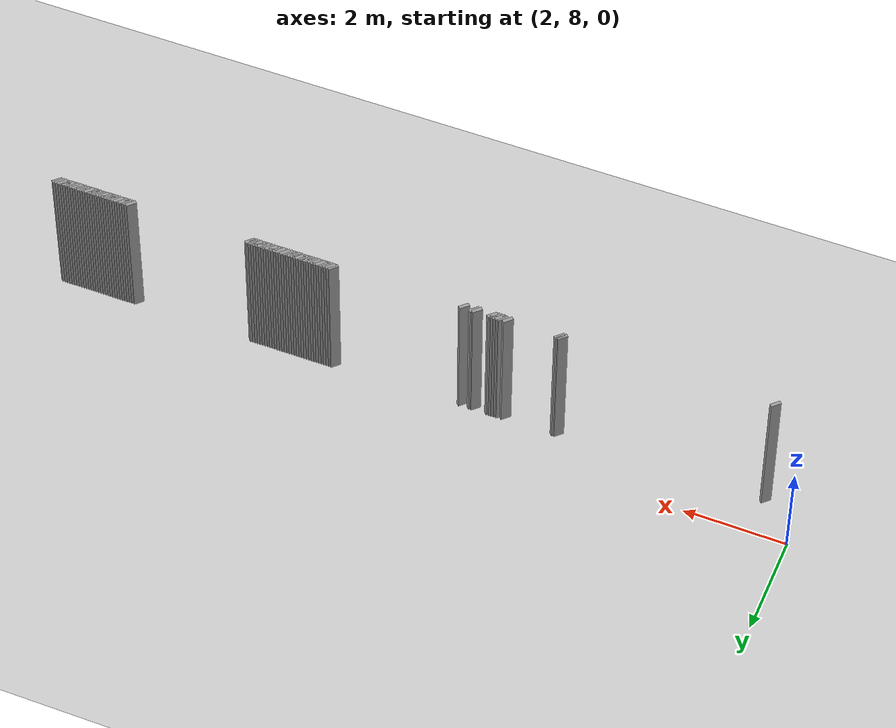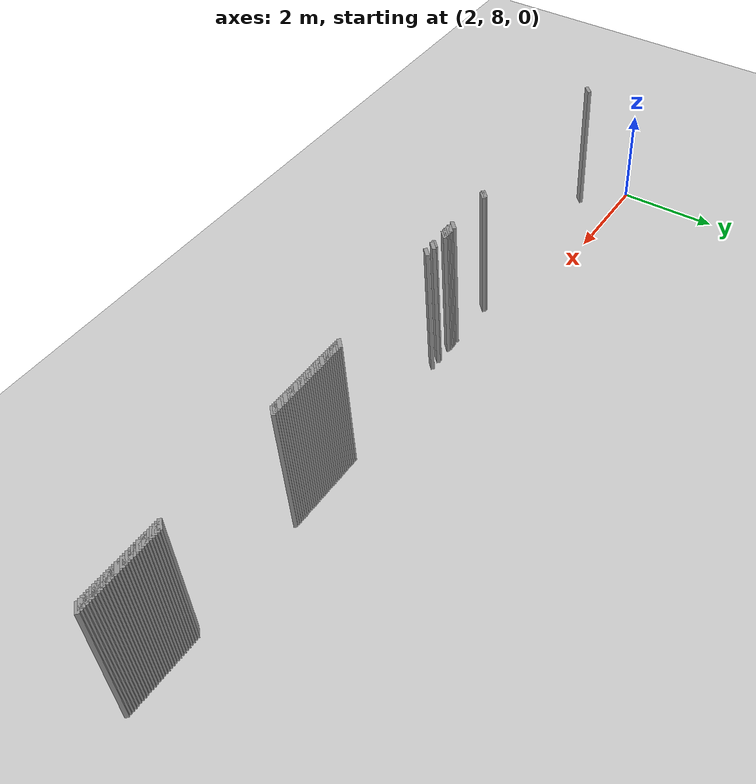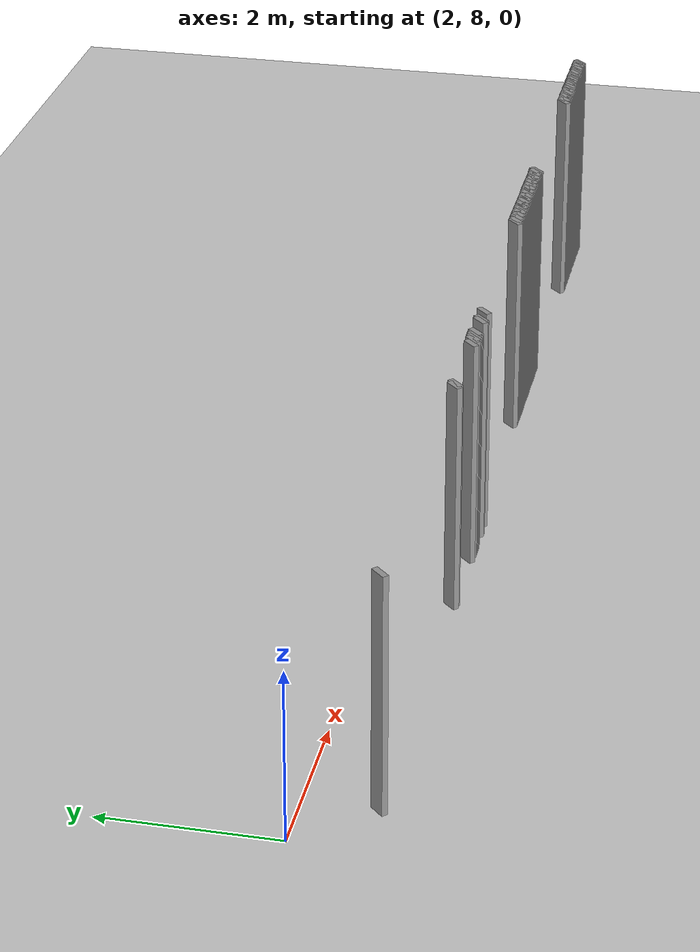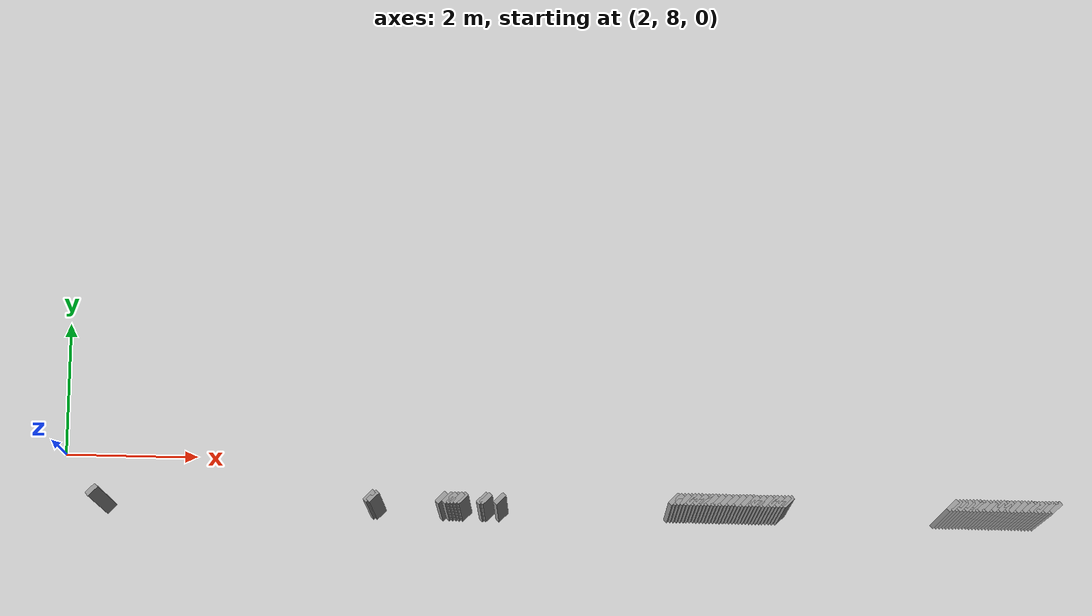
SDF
<sdf version="1.5">
 <world name="default">
  <include><uri>model://ground_plane</uri></include>
  <include><uri>model://sun</uri></include>
  <model name="grey_wall_1634">
   <static>1</static>
   <link name="link">
    <pose>11.2 7.25  1.4 0 0 -0.785398163397</pose>
    <collision name="collision"><geometry><box><size>0.0707106781187 .2  2.8</size></box></geometry></collision>
    <visual name="visual">
     <cast_shadows>0</cast_shadows>
     <geometry><box><size>0.0707106781187 .2  2.8</size></box></geometry>
     <material>
      <script>
       <uri>model://grey_wall/materials/scripts</uri>
       <uri>model://grey_wall/materials/textures</uri>
       <name>vrc/grey_wall</name>
      </script>
     </material>
    </visual>
   </link>
  </model>
  <model name="grey_wall_1635">
   <static>1</static>
   <link name="link">
    <pose>11.25 7.25  1.4 0 0 -0.785398163397</pose>
    <collision name="collision"><geometry><box><size>0.0707106781187 .2  2.8</size></box></geometry></collision>
    <visual name="visual">
     <cast_shadows>0</cast_shadows>
     <geometry><box><size>0.0707106781187 .2  2.8</size></box></geometry>
     <material>
      <script>
       <uri>model://grey_wall/materials/scripts</uri>
       <uri>model://grey_wall/materials/textures</uri>
       <name>vrc/grey_wall</name>
      </script>
     </material>
    </visual>
   </link>
  </model>
  <model name="grey_wall_1636">
   <static>1</static>
   <link name="link">
    <pose>11.3 7.25  1.4 0 0 -0.785398163397</pose>
    <collision name="collision"><geometry><box><size>0.0707106781187 .2  2.8</size></box></geometry></collision>
    <visual name="visual">
     <cast_shadows>0</cast_shadows>
     <geometry><box><size>0.0707106781187 .2  2.8</size></box></geometry>
     <material>
      <script>
       <uri>model://grey_wall/materials/scripts</uri>
       <uri>model://grey_wall/materials/textures</uri>
       <name>vrc/grey_wall</name>
      </script>
     </material>
    </visual>
   </link>
  </model>
  <model name="grey_wall_1637">
   <static>1</static>
   <link name="link">
    <pose>11.35 7.25  1.4 0 0 -0.785398163397</pose>
    <collision name="collision"><geometry><box><size>0.0707106781187 .2  2.8</size></box></geometry></collision>
    <visual name="visual">
     <cast_shadows>0</cast_shadows>
     <geometry><box><size>0.0707106781187 .2  2.8</size></box></geometry>
     <material>
      <script>
       <uri>model://grey_wall/materials/scripts</uri>
       <uri>model://grey_wall/materials/textures</uri>
       <name>vrc/grey_wall</name>
      </script>
     </material>
    </visual>
   </link>
  </model>
  <model name="grey_wall_1638">
   <static>1</static>
   <link name="link">
    <pose>11.4 7.25  1.4 0 0 -0.785398163397</pose>
    <collision name="collision"><geometry><box><size>0.0707106781187 .2  2.8</size></box></geometry></collision>
    <visual name="visual">
     <cast_shadows>0</cast_shadows>
     <geometry><box><size>0.0707106781187 .2  2.8</size></box></geometry>
     <material>
      <script>
       <uri>model://grey_wall/materials/scripts</uri>
       <uri>model://grey_wall/materials/textures</uri>
       <name>vrc/grey_wall</name>
      </script>
     </material>
    </visual>
   </link>
  </model>
  <model name="grey_wall_1639">
   <static>1</static>
   <link name="link">
    <pose>11.45 7.25  1.4 0 0 -0.785398163397</pose>
    <collision name="collision"><geometry><box><size>0.0707106781187 .2  2.8</size></box></geometry></collision>
    <visual name="visual">
     <cast_shadows>0</cast_shadows>
     <geometry><box><size>0.0707106781187 .2  2.8</size></box></geometry>
     <material>
      <script>
       <uri>model://grey_wall/materials/scripts</uri>
       <uri>model://grey_wall/materials/textures</uri>
       <name>vrc/grey_wall</name>
      </script>
     </material>
    </visual>
   </link>
  </model>
  <model name="grey_wall_1640">
   <static>1</static>
   <link name="link">
    <pose>11.5 7.25  1.4 0 0 -0.785398163397</pose>
    <collision name="collision"><geometry><box><size>0.0707106781187 .2  2.8</size></box></geometry></collision>
    <visual name="visual">
     <cast_shadows>0</cast_shadows>
     <geometry><box><size>0.0707106781187 .2  2.8</size></box></geometry>
     <material>
      <script>
       <uri>model://grey_wall/materials/scripts</uri>
       <uri>model://grey_wall/materials/textures</uri>
       <name>vrc/grey_wall</name>
      </script>
     </material>
    </visual>
   </link>
  </model>
  <model name="grey_wall_1641">
   <static>1</static>
   <link name="link">
    <pose>11.55 7.25  1.4 0 0 -0.785398163397</pose>
    <collision name="collision"><geometry><box><size>0.0707106781187 .2  2.8</size></box></geometry></collision>
    <visual name="visual">
     <cast_shadows>0</cast_shadows>
     <geometry><box><size>0.0707106781187 .2  2.8</size></box></geometry>
     <material>
      <script>
       <uri>model://grey_wall/materials/scripts</uri>
       <uri>model://grey_wall/materials/textures</uri>
       <name>vrc/grey_wall</name>
      </script>
     </material>
    </visual>
   </link>
  </model>
  <model name="grey_wall_1642">
   <static>1</static>
   <link name="link">
    <pose>11.6 7.25  1.4 0 0 -0.785398163397</pose>
    <collision name="collision"><geometry><box><size>0.0707106781187 .2  2.8</size></box></geometry></collision>
    <visual name="visual">
     <cast_shadows>0</cast_shadows>
     <geometry><box><size>0.0707106781187 .2  2.8</size></box></geometry>
     <material>
      <script>
       <uri>model://grey_wall/materials/scripts</uri>
       <uri>model://grey_wall/materials/textures</uri>
       <name>vrc/grey_wall</name>
      </script>
     </material>
    </visual>
   </link>
  </model>
  <model name="grey_wall_1643">
   <static>1</static>
   <link name="link">
    <pose>11.65 7.25  1.4 0 0 -0.785398163397</pose>
    <collision name="collision"><geometry><box><size>0.0707106781187 .2  2.8</size></box></geometry></collision>
    <visual name="visual">
     <cast_shadows>0</cast_shadows>
     <geometry><box><size>0.0707106781187 .2  2.8</size></box></geometry>
     <material>
      <script>
       <uri>model://grey_wall/materials/scripts</uri>
       <uri>model://grey_wall/materials/textures</uri>
       <name>vrc/grey_wall</name>
      </script>
     </material>
    </visual>
   </link>
  </model>
  <model name="grey_wall_1644">
   <static>1</static>
   <link name="link">
    <pose>11.7 7.25  1.4 0 0 -0.785398163397</pose>
    <collision name="collision"><geometry><box><size>0.0707106781187 .2  2.8</size></box></geometry></collision>
    <visual name="visual">
     <cast_shadows>0</cast_shadows>
     <geometry><box><size>0.0707106781187 .2  2.8</size></box></geometry>
     <material>
      <script>
       <uri>model://grey_wall/materials/scripts</uri>
       <uri>model://grey_wall/materials/textures</uri>
       <name>vrc/grey_wall</name>
      </script>
     </material>
    </visual>
   </link>
  </model>
  <model name="grey_wall_1645">
   <static>1</static>
   <link name="link">
    <pose>11.75 7.25  1.4 0 0 -0.785398163397</pose>
    <collision name="collision"><geometry><box><size>0.0707106781187 .2  2.8</size></box></geometry></collision>
    <visual name="visual">
     <cast_shadows>0</cast_shadows>
     <geometry><box><size>0.0707106781187 .2  2.8</size></box></geometry>
     <material>
      <script>
       <uri>model://grey_wall/materials/scripts</uri>
       <uri>model://grey_wall/materials/textures</uri>
       <name>vrc/grey_wall</name>
      </script>
     </material>
    </visual>
   </link>
  </model>
  <model name="grey_wall_1646">
   <static>1</static>
   <link name="link">
    <pose>11.8 7.25  1.4 0 0 -0.785398163397</pose>
    <collision name="collision"><geometry><box><size>0.0707106781187 .2  2.8</size></box></geometry></collision>
    <visual name="visual">
     <cast_shadows>0</cast_shadows>
     <geometry><box><size>0.0707106781187 .2  2.8</size></box></geometry>
     <material>
      <script>
       <uri>model://grey_wall/materials/scripts</uri>
       <uri>model://grey_wall/materials/textures</uri>
       <name>vrc/grey_wall</name>
      </script>
     </material>
    </visual>
   </link>
  </model>
  <model name="grey_wall_1647">
   <static>1</static>
   <link name="link">
    <pose>11.85 7.25  1.4 0 0 -0.785398163397</pose>
    <collision name="collision"><geometry><box><size>0.0707106781187 .2  2.8</size></box></geometry></collision>
    <visual name="visual">
     <cast_shadows>0</cast_shadows>
     <geometry><box><size>0.0707106781187 .2  2.8</size></box></geometry>
     <material>
      <script>
       <uri>model://grey_wall/materials/scripts</uri>
       <uri>model://grey_wall/materials/textures</uri>
       <name>vrc/grey_wall</name>
      </script>
     </material>
    </visual>
   </link>
  </model>
  <model name="grey_wall_1648">
   <static>1</static>
   <link name="link">
    <pose>11.9 7.25  1.4 0 0 -0.785398163397</pose>
    <collision name="collision"><geometry><box><size>0.0707106781187 .2  2.8</size></box></geometry></collision>
    <visual name="visual">
     <cast_shadows>0</cast_shadows>
     <geometry><box><size>0.0707106781187 .2  2.8</size></box></geometry>
     <material>
      <script>
       <uri>model://grey_wall/materials/scripts</uri>
       <uri>model://grey_wall/materials/textures</uri>
       <name>vrc/grey_wall</name>
      </script>
     </material>
    </visual>
   </link>
  </model>
  <model name="grey_wall_1649">
   <static>1</static>
   <link name="link">
    <pose>11.95 7.25  1.4 0 0 -0.785398163397</pose>
    <collision name="collision"><geometry><box><size>0.0707106781187 .2  2.8</size></box></geometry></collision>
    <visual name="visual">
     <cast_shadows>0</cast_shadows>
     <geometry><box><size>0.0707106781187 .2  2.8</size></box></geometry>
     <material>
      <script>
       <uri>model://grey_wall/materials/scripts</uri>
       <uri>model://grey_wall/materials/textures</uri>
       <name>vrc/grey_wall</name>
      </script>
     </material>
    </visual>
   </link>
  </model>
  <model name="grey_wall_1650">
   <static>1</static>
   <link name="link">
    <pose>12.0 7.25  1.4 0 0 -0.785398163397</pose>
    <collision name="collision"><geometry><box><size>0.0707106781187 .2  2.8</size></box></geometry></collision>
    <visual name="visual">
     <cast_shadows>0</cast_shadows>
     <geometry><box><size>0.0707106781187 .2  2.8</size></box></geometry>
     <material>
      <script>
       <uri>model://grey_wall/materials/scripts</uri>
       <uri>model://grey_wall/materials/textures</uri>
       <name>vrc/grey_wall</name>
      </script>
     </material>
    </visual>
   </link>
  </model>
  <model name="grey_wall_1651">
   <static>1</static>
   <link name="link">
    <pose>12.05 7.25  1.4 0 0 -0.785398163397</pose>
    <collision name="collision"><geometry><box><size>0.0707106781187 .2  2.8</size></box></geometry></collision>
    <visual name="visual">
     <cast_shadows>0</cast_shadows>
     <geometry><box><size>0.0707106781187 .2  2.8</size></box></geometry>
     <material>
      <script>
       <uri>model://grey_wall/materials/scripts</uri>
       <uri>model://grey_wall/materials/textures</uri>
       <name>vrc/grey_wall</name>
      </script>
     </material>
    </visual>
   </link>
  </model>
  <model name="grey_wall_1652">
   <static>1</static>
   <link name="link">
    <pose>12.1 7.25  1.4 0 0 -0.785398163397</pose>
    <collision name="collision"><geometry><box><size>0.0707106781187 .2  2.8</size></box></geometry></collision>
    <visual name="visual">
     <cast_shadows>0</cast_shadows>
     <geometry><box><size>0.0707106781187 .2  2.8</size></box></geometry>
     <material>
      <script>
       <uri>model://grey_wall/materials/scripts</uri>
       <uri>model://grey_wall/materials/textures</uri>
       <name>vrc/grey_wall</name>
      </script>
     </material>
    </visual>
   </link>
  </model>
  <model name="grey_wall_1653">
   <static>1</static>
   <link name="link">
    <pose>12.15 7.25  1.4 0 0 -0.785398163397</pose>
    <collision name="collision"><geometry><box><size>0.0707106781187 .2  2.8</size></box></geometry></collision>
    <visual name="visual">
     <cast_shadows>0</cast_shadows>
     <geometry><box><size>0.0707106781187 .2  2.8</size></box></geometry>
     <material>
      <script>
       <uri>model://grey_wall/materials/scripts</uri>
       <uri>model://grey_wall/materials/textures</uri>
       <name>vrc/grey_wall</name>
      </script>
     </material>
    </visual>
   </link>
  </model>
  <model name="grey_wall_1654">
   <static>1</static>
   <link name="link">
    <pose>12.2 7.25  1.4 0 0 -0.785398163397</pose>
    <collision name="collision"><geometry><box><size>0.0707106781187 .2  2.8</size></box></geometry></collision>
    <visual name="visual">
     <cast_shadows>0</cast_shadows>
     <geometry><box><size>0.0707106781187 .2  2.8</size></box></geometry>
     <material>
      <script>
       <uri>model://grey_wall/materials/scripts</uri>
       <uri>model://grey_wall/materials/textures</uri>
       <name>vrc/grey_wall</name>
      </script>
     </material>
    </visual>
   </link>
  </model>
  <model name="grey_wall_1655">
   <static>1</static>
   <link name="link">
    <pose>12.25 7.25  1.4 0 0 -0.785398163397</pose>
    <collision name="collision"><geometry><box><size>0.0707106781187 .2  2.8</size></box></geometry></collision>
    <visual name="visual">
     <cast_shadows>0</cast_shadows>
     <geometry><box><size>0.0707106781187 .2  2.8</size></box></geometry>
     <material>
      <script>
       <uri>model://grey_wall/materials/scripts</uri>
       <uri>model://grey_wall/materials/textures</uri>
       <name>vrc/grey_wall</name>
      </script>
     </material>
    </visual>
   </link>
  </model>
  <model name="grey_wall_1656">
   <static>1</static>
   <link name="link">
    <pose>12.3 7.25  1.4 0 0 -0.785398163397</pose>
    <collision name="collision"><geometry><box><size>0.0707106781187 .2  2.8</size></box></geometry></collision>
    <visual name="visual">
     <cast_shadows>0</cast_shadows>
     <geometry><box><size>0.0707106781187 .2  2.8</size></box></geometry>
     <material>
      <script>
       <uri>model://grey_wall/materials/scripts</uri>
       <uri>model://grey_wall/materials/textures</uri>
       <name>vrc/grey_wall</name>
      </script>
     </material>
    </visual>
   </link>
  </model>
  <model name="grey_wall_1657">
   <static>1</static>
   <link name="link">
    <pose>12.35 7.25  1.4 0 0 -0.785398163397</pose>
    <collision name="collision"><geometry><box><size>0.0707106781187 .2  2.8</size></box></geometry></collision>
    <visual name="visual">
     <cast_shadows>0</cast_shadows>
     <geometry><box><size>0.0707106781187 .2  2.8</size></box></geometry>
     <material>
      <script>
       <uri>model://grey_wall/materials/scripts</uri>
       <uri>model://grey_wall/materials/textures</uri>
       <name>vrc/grey_wall</name>
      </script>
     </material>
    </visual>
   </link>
  </model>
  <model name="grey_wall_1658">
   <static>1</static>
   <link name="link">
    <pose>12.4 7.25  1.4 0 0 -0.785398163397</pose>
    <collision name="collision"><geometry><box><size>0.0707106781187 .2  2.8</size></box></geometry></collision>
    <visual name="visual">
     <cast_shadows>0</cast_shadows>
     <geometry><box><size>0.0707106781187 .2  2.8</size></box></geometry>
     <material>
      <script>
       <uri>model://grey_wall/materials/scripts</uri>
       <uri>model://grey_wall/materials/textures</uri>
       <name>vrc/grey_wall</name>
      </script>
     </material>
    </visual>
   </link>
  </model>
  <model name="grey_wall_1659">
   <static>1</static>
   <link name="link">
    <pose>12.45 7.25  1.4 0 0 -0.785398163397</pose>
    <collision name="collision"><geometry><box><size>0.0707106781187 .2  2.8</size></box></geometry></collision>
    <visual name="visual">
     <cast_shadows>0</cast_shadows>
     <geometry><box><size>0.0707106781187 .2  2.8</size></box></geometry>
     <material>
      <script>
       <uri>model://grey_wall/materials/scripts</uri>
       <uri>model://grey_wall/materials/textures</uri>
       <name>vrc/grey_wall</name>
      </script>
     </material>
    </visual>
   </link>
  </model>
  <model name="grey_wall_1660">
   <static>1</static>
   <link name="link">
    <pose>12.5 7.25  1.4 0 0 -0.785398163397</pose>
    <collision name="collision"><geometry><box><size>0.0707106781187 .2  2.8</size></box></geometry></collision>
    <visual name="visual">
     <cast_shadows>0</cast_shadows>
     <geometry><box><size>0.0707106781187 .2  2.8</size></box></geometry>
     <material>
      <script>
       <uri>model://grey_wall/materials/scripts</uri>
       <uri>model://grey_wall/materials/textures</uri>
       <name>vrc/grey_wall</name>
      </script>
     </material>
    </visual>
   </link>
  </model>
  <model name="grey_wall_1661">
   <static>1</static>
   <link name="link">
    <pose>12.55 7.25  1.4 0 0 -0.785398163397</pose>
    <collision name="collision"><geometry><box><size>0.0707106781187 .2  2.8</size></box></geometry></collision>
    <visual name="visual">
     <cast_shadows>0</cast_shadows>
     <geometry><box><size>0.0707106781187 .2  2.8</size></box></geometry>
     <material>
      <script>
       <uri>model://grey_wall/materials/scripts</uri>
       <uri>model://grey_wall/materials/textures</uri>
       <name>vrc/grey_wall</name>
      </script>
     </material>
    </visual>
   </link>
  </model>
  <model name="grey_wall_1662">
   <static>1</static>
   <link name="link">
    <pose>12.6 7.25  1.4 0 0 -0.785398163397</pose>
    <collision name="collision"><geometry><box><size>0.0707106781187 .2  2.8</size></box></geometry></collision>
    <visual name="visual">
     <cast_shadows>0</cast_shadows>
     <geometry><box><size>0.0707106781187 .2  2.8</size></box></geometry>
     <material>
      <script>
       <uri>model://grey_wall/materials/scripts</uri>
       <uri>model://grey_wall/materials/textures</uri>
       <name>vrc/grey_wall</name>
      </script>
     </material>
    </visual>
   </link>
  </model>
  <model name="grey_wall_1663">
   <static>1</static>
   <link name="link">
    <pose>12.65 7.25  1.4 0 0 -0.785398163397</pose>
    <collision name="collision"><geometry><box><size>0.0707106781187 .2  2.8</size></box></geometry></collision>
    <visual name="visual">
     <cast_shadows>0</cast_shadows>
     <geometry><box><size>0.0707106781187 .2  2.8</size></box></geometry>
     <material>
      <script>
       <uri>model://grey_wall/materials/scripts</uri>
       <uri>model://grey_wall/materials/textures</uri>
       <name>vrc/grey_wall</name>
      </script>
     </material>
    </visual>
   </link>
  </model>
  <model name="grey_wall_1664">
   <static>1</static>
   <link name="link">
    <pose>12.7 7.25  1.4 0 0 -0.785398163397</pose>
    <collision name="collision"><geometry><box><size>0.0707106781187 .2  2.8</size></box></geometry></collision>
    <visual name="visual">
     <cast_shadows>0</cast_shadows>
     <geometry><box><size>0.0707106781187 .2  2.8</size></box></geometry>
     <material>
      <script>
       <uri>model://grey_wall/materials/scripts</uri>
       <uri>model://grey_wall/materials/textures</uri>
       <name>vrc/grey_wall</name>
      </script>
     </material>
    </visual>
   </link>
  </model>
  <model name="grey_wall_1665">
   <static>1</static>
   <link name="link">
    <pose>12.75 7.25  1.4 0 0 -0.785398163397</pose>
    <collision name="collision"><geometry><box><size>0.0707106781187 .2  2.8</size></box></geometry></collision>
    <visual name="visual">
     <cast_shadows>0</cast_shadows>
     <geometry><box><size>0.0707106781187 .2  2.8</size></box></geometry>
     <material>
      <script>
       <uri>model://grey_wall/materials/scripts</uri>
       <uri>model://grey_wall/materials/textures</uri>
       <name>vrc/grey_wall</name>
      </script>
     </material>
    </visual>
   </link>
  </model>
  <model name="grey_wall_1666">
   <static>1</static>
   <link name="link">
    <pose>12.8 7.25  1.4 0 0 -0.785398163397</pose>
    <collision name="collision"><geometry><box><size>0.0707106781187 .2  2.8</size></box></geometry></collision>
    <visual name="visual">
     <cast_shadows>0</cast_shadows>
     <geometry><box><size>0.0707106781187 .2  2.8</size></box></geometry>
     <material>
      <script>
       <uri>model://grey_wall/materials/scripts</uri>
       <uri>model://grey_wall/materials/textures</uri>
       <name>vrc/grey_wall</name>
      </script>
     </material>
    </visual>
   </link>
  </model>
  <model name="grey_wall_1667">
   <static>1</static>
   <link name="link">
    <pose>12.85 7.25  1.4 0 0 -0.785398163397</pose>
    <collision name="collision"><geometry><box><size>0.0707106781187 .2  2.8</size></box></geometry></collision>
    <visual name="visual">
     <cast_shadows>0</cast_shadows>
     <geometry><box><size>0.0707106781187 .2  2.8</size></box></geometry>
     <material>
      <script>
       <uri>model://grey_wall/materials/scripts</uri>
       <uri>model://grey_wall/materials/textures</uri>
       <name>vrc/grey_wall</name>
      </script>
     </material>
    </visual>
   </link>
  </model>
  <model name="grey_wall_1668">
   <static>1</static>
   <link name="link">
    <pose>15.25 7.25  1.4 0 0 -0.785398163397</pose>
    <collision name="collision"><geometry><box><size>0.0707106781187 .2  2.8</size></box></geometry></collision>
    <visual name="visual">
     <cast_shadows>0</cast_shadows>
     <geometry><box><size>0.0707106781187 .2  2.8</size></box></geometry>
     <material>
      <script>
       <uri>model://grey_wall/materials/scripts</uri>
       <uri>model://grey_wall/materials/textures</uri>
       <name>vrc/grey_wall</name>
      </script>
     </material>
    </visual>
   </link>
  </model>
  <model name="grey_wall_1669">
   <static>1</static>
   <link name="link">
    <pose>15.3 7.25  1.4 0 0 -0.785398163397</pose>
    <collision name="collision"><geometry><box><size>0.0707106781187 .2  2.8</size></box></geometry></collision>
    <visual name="visual">
     <cast_shadows>0</cast_shadows>
     <geometry><box><size>0.0707106781187 .2  2.8</size></box></geometry>
     <material>
      <script>
       <uri>model://grey_wall/materials/scripts</uri>
       <uri>model://grey_wall/materials/textures</uri>
       <name>vrc/grey_wall</name>
      </script>
     </material>
    </visual>
   </link>
  </model>
  <model name="grey_wall_1670">
   <static>1</static>
   <link name="link">
    <pose>15.35 7.25  1.4 0 0 -0.785398163397</pose>
    <collision name="collision"><geometry><box><size>0.0707106781187 .2  2.8</size></box></geometry></collision>
    <visual name="visual">
     <cast_shadows>0</cast_shadows>
     <geometry><box><size>0.0707106781187 .2  2.8</size></box></geometry>
     <material>
      <script>
       <uri>model://grey_wall/materials/scripts</uri>
       <uri>model://grey_wall/materials/textures</uri>
       <name>vrc/grey_wall</name>
      </script>
     </material>
    </visual>
   </link>
  </model>
  <model name="grey_wall_1671">
   <static>1</static>
   <link name="link">
    <pose>15.4 7.25  1.4 0 0 -0.785398163397</pose>
    <collision name="collision"><geometry><box><size>0.0707106781187 .2  2.8</size></box></geometry></collision>
    <visual name="visual">
     <cast_shadows>0</cast_shadows>
     <geometry><box><size>0.0707106781187 .2  2.8</size></box></geometry>
     <material>
      <script>
       <uri>model://grey_wall/materials/scripts</uri>
       <uri>model://grey_wall/materials/textures</uri>
       <name>vrc/grey_wall</name>
      </script>
     </material>
    </visual>
   </link>
  </model>
  <model name="grey_wall_1672">
   <static>1</static>
   <link name="link">
    <pose>15.45 7.25  1.4 0 0 -0.785398163397</pose>
    <collision name="collision"><geometry><box><size>0.0707106781187 .2  2.8</size></box></geometry></collision>
    <visual name="visual">
     <cast_shadows>0</cast_shadows>
     <geometry><box><size>0.0707106781187 .2  2.8</size></box></geometry>
     <material>
      <script>
       <uri>model://grey_wall/materials/scripts</uri>
       <uri>model://grey_wall/materials/textures</uri>
       <name>vrc/grey_wall</name>
      </script>
     </material>
    </visual>
   </link>
  </model>
  <model name="grey_wall_1673">
   <static>1</static>
   <link name="link">
    <pose>15.5 7.25  1.4 0 0 -0.785398163397</pose>
    <collision name="collision"><geometry><box><size>0.0707106781187 .2  2.8</size></box></geometry></collision>
    <visual name="visual">
     <cast_shadows>0</cast_shadows>
     <geometry><box><size>0.0707106781187 .2  2.8</size></box></geometry>
     <material>
      <script>
       <uri>model://grey_wall/materials/scripts</uri>
       <uri>model://grey_wall/materials/textures</uri>
       <name>vrc/grey_wall</name>
      </script>
     </material>
    </visual>
   </link>
  </model>
  <model name="grey_wall_1674">
   <static>1</static>
   <link name="link">
    <pose>15.55 7.25  1.4 0 0 -0.785398163397</pose>
    <collision name="collision"><geometry><box><size>0.0707106781187 .2  2.8</size></box></geometry></collision>
    <visual name="visual">
     <cast_shadows>0</cast_shadows>
     <geometry><box><size>0.0707106781187 .2  2.8</size></box></geometry>
     <material>
      <script>
       <uri>model://grey_wall/materials/scripts</uri>
       <uri>model://grey_wall/materials/textures</uri>
       <name>vrc/grey_wall</name>
      </script>
     </material>
    </visual>
   </link>
  </model>
  <model name="grey_wall_1675">
   <static>1</static>
   <link name="link">
    <pose>15.6 7.25  1.4 0 0 -0.785398163397</pose>
    <collision name="collision"><geometry><box><size>0.0707106781187 .2  2.8</size></box></geometry></collision>
    <visual name="visual">
     <cast_shadows>0</cast_shadows>
     <geometry><box><size>0.0707106781187 .2  2.8</size></box></geometry>
     <material>
      <script>
       <uri>model://grey_wall/materials/scripts</uri>
       <uri>model://grey_wall/materials/textures</uri>
       <name>vrc/grey_wall</name>
      </script>
     </material>
    </visual>
   </link>
  </model>
  <model name="grey_wall_1676">
   <static>1</static>
   <link name="link">
    <pose>15.65 7.25  1.4 0 0 -0.785398163397</pose>
    <collision name="collision"><geometry><box><size>0.0707106781187 .2  2.8</size></box></geometry></collision>
    <visual name="visual">
     <cast_shadows>0</cast_shadows>
     <geometry><box><size>0.0707106781187 .2  2.8</size></box></geometry>
     <material>
      <script>
       <uri>model://grey_wall/materials/scripts</uri>
       <uri>model://grey_wall/materials/textures</uri>
       <name>vrc/grey_wall</name>
      </script>
     </material>
    </visual>
   </link>
  </model>
  <model name="grey_wall_1677">
   <static>1</static>
   <link name="link">
    <pose>15.7 7.25  1.4 0 0 -0.785398163397</pose>
    <collision name="collision"><geometry><box><size>0.0707106781187 .2  2.8</size></box></geometry></collision>
    <visual name="visual">
     <cast_shadows>0</cast_shadows>
     <geometry><box><size>0.0707106781187 .2  2.8</size></box></geometry>
     <material>
      <script>
       <uri>model://grey_wall/materials/scripts</uri>
       <uri>model://grey_wall/materials/textures</uri>
       <name>vrc/grey_wall</name>
      </script>
     </material>
    </visual>
   </link>
  </model>
  <model name="grey_wall_1678">
   <static>1</static>
   <link name="link">
    <pose>15.75 7.25  1.4 0 0 -0.785398163397</pose>
    <collision name="collision"><geometry><box><size>0.0707106781187 .2  2.8</size></box></geometry></collision>
    <visual name="visual">
     <cast_shadows>0</cast_shadows>
     <geometry><box><size>0.0707106781187 .2  2.8</size></box></geometry>
     <material>
      <script>
       <uri>model://grey_wall/materials/scripts</uri>
       <uri>model://grey_wall/materials/textures</uri>
       <name>vrc/grey_wall</name>
      </script>
     </material>
    </visual>
   </link>
  </model>
  <model name="grey_wall_1679">
   <static>1</static>
   <link name="link">
    <pose>15.8 7.25  1.4 0 0 -0.785398163397</pose>
    <collision name="collision"><geometry><box><size>0.0707106781187 .2  2.8</size></box></geometry></collision>
    <visual name="visual">
     <cast_shadows>0</cast_shadows>
     <geometry><box><size>0.0707106781187 .2  2.8</size></box></geometry>
     <material>
      <script>
       <uri>model://grey_wall/materials/scripts</uri>
       <uri>model://grey_wall/materials/textures</uri>
       <name>vrc/grey_wall</name>
      </script>
     </material>
    </visual>
   </link>
  </model>
  <model name="grey_wall_1680">
   <static>1</static>
   <link name="link">
    <pose>15.85 7.25  1.4 0 0 -0.785398163397</pose>
    <collision name="collision"><geometry><box><size>0.0707106781187 .2  2.8</size></box></geometry></collision>
    <visual name="visual">
     <cast_shadows>0</cast_shadows>
     <geometry><box><size>0.0707106781187 .2  2.8</size></box></geometry>
     <material>
      <script>
       <uri>model://grey_wall/materials/scripts</uri>
       <uri>model://grey_wall/materials/textures</uri>
       <name>vrc/grey_wall</name>
      </script>
     </material>
    </visual>
   </link>
  </model>
  <model name="grey_wall_1681">
   <static>1</static>
   <link name="link">
    <pose>15.9 7.25  1.4 0 0 -0.785398163397</pose>
    <collision name="collision"><geometry><box><size>0.0707106781187 .2  2.8</size></box></geometry></collision>
    <visual name="visual">
     <cast_shadows>0</cast_shadows>
     <geometry><box><size>0.0707106781187 .2  2.8</size></box></geometry>
     <material>
      <script>
       <uri>model://grey_wall/materials/scripts</uri>
       <uri>model://grey_wall/materials/textures</uri>
       <name>vrc/grey_wall</name>
      </script>
     </material>
    </visual>
   </link>
  </model>
  <model name="grey_wall_1682">
   <static>1</static>
   <link name="link">
    <pose>15.95 7.25  1.4 0 0 -0.785398163397</pose>
    <collision name="collision"><geometry><box><size>0.0707106781187 .2  2.8</size></box></geometry></collision>
    <visual name="visual">
     <cast_shadows>0</cast_shadows>
     <geometry><box><size>0.0707106781187 .2  2.8</size></box></geometry>
     <material>
      <script>
       <uri>model://grey_wall/materials/scripts</uri>
       <uri>model://grey_wall/materials/textures</uri>
       <name>vrc/grey_wall</name>
      </script>
     </material>
    </visual>
   </link>
  </model>
  <model name="grey_wall_1683">
   <static>1</static>
   <link name="link">
    <pose>16.0 7.25  1.4 0 0 -0.785398163397</pose>
    <collision name="collision"><geometry><box><size>0.0707106781187 .2  2.8</size></box></geometry></collision>
    <visual name="visual">
     <cast_shadows>0</cast_shadows>
     <geometry><box><size>0.0707106781187 .2  2.8</size></box></geometry>
     <material>
      <script>
       <uri>model://grey_wall/materials/scripts</uri>
       <uri>model://grey_wall/materials/textures</uri>
       <name>vrc/grey_wall</name>
      </script>
     </material>
    </visual>
   </link>
  </model>
  <model name="grey_wall_1684">
   <static>1</static>
   <link name="link">
    <pose>16.05 7.25  1.4 0 0 -0.785398163397</pose>
    <collision name="collision"><geometry><box><size>0.0707106781187 .2  2.8</size></box></geometry></collision>
    <visual name="visual">
     <cast_shadows>0</cast_shadows>
     <geometry><box><size>0.0707106781187 .2  2.8</size></box></geometry>
     <material>
      <script>
       <uri>model://grey_wall/materials/scripts</uri>
       <uri>model://grey_wall/materials/textures</uri>
       <name>vrc/grey_wall</name>
      </script>
     </material>
    </visual>
   </link>
  </model>
  <model name="grey_wall_1685">
   <static>1</static>
   <link name="link">
    <pose>16.1 7.25  1.4 0 0 -0.785398163397</pose>
    <collision name="collision"><geometry><box><size>0.0707106781187 .2  2.8</size></box></geometry></collision>
    <visual name="visual">
     <cast_shadows>0</cast_shadows>
     <geometry><box><size>0.0707106781187 .2  2.8</size></box></geometry>
     <material>
      <script>
       <uri>model://grey_wall/materials/scripts</uri>
       <uri>model://grey_wall/materials/textures</uri>
       <name>vrc/grey_wall</name>
      </script>
     </material>
    </visual>
   </link>
  </model>
  <model name="grey_wall_1686">
   <static>1</static>
   <link name="link">
    <pose>16.15 7.25  1.4 0 0 -0.785398163397</pose>
    <collision name="collision"><geometry><box><size>0.0707106781187 .2  2.8</size></box></geometry></collision>
    <visual name="visual">
     <cast_shadows>0</cast_shadows>
     <geometry><box><size>0.0707106781187 .2  2.8</size></box></geometry>
     <material>
      <script>
       <uri>model://grey_wall/materials/scripts</uri>
       <uri>model://grey_wall/materials/textures</uri>
       <name>vrc/grey_wall</name>
      </script>
     </material>
    </visual>
   </link>
  </model>
  <model name="grey_wall_1687">
   <static>1</static>
   <link name="link">
    <pose>16.2 7.25  1.4 0 0 -0.785398163397</pose>
    <collision name="collision"><geometry><box><size>0.0707106781187 .2  2.8</size></box></geometry></collision>
    <visual name="visual">
     <cast_shadows>0</cast_shadows>
     <geometry><box><size>0.0707106781187 .2  2.8</size></box></geometry>
     <material>
      <script>
       <uri>model://grey_wall/materials/scripts</uri>
       <uri>model://grey_wall/materials/textures</uri>
       <name>vrc/grey_wall</name>
      </script>
     </material>
    </visual>
   </link>
  </model>
  <model name="grey_wall_1688">
   <static>1</static>
   <link name="link">
    <pose>16.25 7.25  1.4 0 0 -0.785398163397</pose>
    <collision name="collision"><geometry><box><size>0.0707106781187 .2  2.8</size></box></geometry></collision>
    <visual name="visual">
     <cast_shadows>0</cast_shadows>
     <geometry><box><size>0.0707106781187 .2  2.8</size></box></geometry>
     <material>
      <script>
       <uri>model://grey_wall/materials/scripts</uri>
       <uri>model://grey_wall/materials/textures</uri>
       <name>vrc/grey_wall</name>
      </script>
     </material>
    </visual>
   </link>
  </model>
  <model name="grey_wall_1689">
   <static>1</static>
   <link name="link">
    <pose>16.3 7.25  1.4 0 0 -0.785398163397</pose>
    <collision name="collision"><geometry><box><size>0.0707106781187 .2  2.8</size></box></geometry></collision>
    <visual name="visual">
     <cast_shadows>0</cast_shadows>
     <geometry><box><size>0.0707106781187 .2  2.8</size></box></geometry>
     <material>
      <script>
       <uri>model://grey_wall/materials/scripts</uri>
       <uri>model://grey_wall/materials/textures</uri>
       <name>vrc/grey_wall</name>
      </script>
     </material>
    </visual>
   </link>
  </model>
  <model name="grey_wall_1690">
   <static>1</static>
   <link name="link">
    <pose>16.35 7.25  1.4 0 0 -0.785398163397</pose>
    <collision name="collision"><geometry><box><size>0.0707106781187 .2  2.8</size></box></geometry></collision>
    <visual name="visual">
     <cast_shadows>0</cast_shadows>
     <geometry><box><size>0.0707106781187 .2  2.8</size></box></geometry>
     <material>
      <script>
       <uri>model://grey_wall/materials/scripts</uri>
       <uri>model://grey_wall/materials/textures</uri>
       <name>vrc/grey_wall</name>
      </script>
     </material>
    </visual>
   </link>
  </model>
  <model name="grey_wall_1691">
   <static>1</static>
   <link name="link">
    <pose>16.4 7.25  1.4 0 0 -0.785398163397</pose>
    <collision name="collision"><geometry><box><size>0.0707106781187 .2  2.8</size></box></geometry></collision>
    <visual name="visual">
     <cast_shadows>0</cast_shadows>
     <geometry><box><size>0.0707106781187 .2  2.8</size></box></geometry>
     <material>
      <script>
       <uri>model://grey_wall/materials/scripts</uri>
       <uri>model://grey_wall/materials/textures</uri>
       <name>vrc/grey_wall</name>
      </script>
     </material>
    </visual>
   </link>
  </model>
  <model name="grey_wall_1692">
   <static>1</static>
   <link name="link">
    <pose>16.45 7.25  1.4 0 0 -0.785398163397</pose>
    <collision name="collision"><geometry><box><size>0.0707106781187 .2  2.8</size></box></geometry></collision>
    <visual name="visual">
     <cast_shadows>0</cast_shadows>
     <geometry><box><size>0.0707106781187 .2  2.8</size></box></geometry>
     <material>
      <script>
       <uri>model://grey_wall/materials/scripts</uri>
       <uri>model://grey_wall/materials/textures</uri>
       <name>vrc/grey_wall</name>
      </script>
     </material>
    </visual>
   </link>
  </model>
  <model name="grey_wall_1693">
   <static>1</static>
   <link name="link">
    <pose>16.5 7.25  1.4 0 0 -0.785398163397</pose>
    <collision name="collision"><geometry><box><size>0.0707106781187 .2  2.8</size></box></geometry></collision>
    <visual name="visual">
     <cast_shadows>0</cast_shadows>
     <geometry><box><size>0.0707106781187 .2  2.8</size></box></geometry>
     <material>
      <script>
       <uri>model://grey_wall/materials/scripts</uri>
       <uri>model://grey_wall/materials/textures</uri>
       <name>vrc/grey_wall</name>
      </script>
     </material>
    </visual>
   </link>
  </model>
  <model name="grey_wall_1694">
   <static>1</static>
   <link name="link">
    <pose>16.55 7.25  1.4 0 0 -0.785398163397</pose>
    <collision name="collision"><geometry><box><size>0.0707106781187 .2  2.8</size></box></geometry></collision>
    <visual name="visual">
     <cast_shadows>0</cast_shadows>
     <geometry><box><size>0.0707106781187 .2  2.8</size></box></geometry>
     <material>
      <script>
       <uri>model://grey_wall/materials/scripts</uri>
       <uri>model://grey_wall/materials/textures</uri>
       <name>vrc/grey_wall</name>
      </script>
     </material>
    </visual>
   </link>
  </model>
  <model name="grey_wall_1695">
   <static>1</static>
   <link name="link">
    <pose>16.6 7.25  1.4 0 0 -0.785398163397</pose>
    <collision name="collision"><geometry><box><size>0.0707106781187 .2  2.8</size></box></geometry></collision>
    <visual name="visual">
     <cast_shadows>0</cast_shadows>
     <geometry><box><size>0.0707106781187 .2  2.8</size></box></geometry>
     <material>
      <script>
       <uri>model://grey_wall/materials/scripts</uri>
       <uri>model://grey_wall/materials/textures</uri>
       <name>vrc/grey_wall</name>
      </script>
     </material>
    </visual>
   </link>
  </model>
  <model name="grey_wall_1696">
   <static>1</static>
   <link name="link">
    <pose>16.65 7.25  1.4 0 0 -0.785398163397</pose>
    <collision name="collision"><geometry><box><size>0.0707106781187 .2  2.8</size></box></geometry></collision>
    <visual name="visual">
     <cast_shadows>0</cast_shadows>
     <geometry><box><size>0.0707106781187 .2  2.8</size></box></geometry>
     <material>
      <script>
       <uri>model://grey_wall/materials/scripts</uri>
       <uri>model://grey_wall/materials/textures</uri>
       <name>vrc/grey_wall</name>
      </script>
     </material>
    </visual>
   </link>
  </model>
  <model name="grey_wall_1697">
   <static>1</static>
   <link name="link">
    <pose>16.7 7.25  1.4 0 0 -0.785398163397</pose>
    <collision name="collision"><geometry><box><size>0.0707106781187 .2  2.8</size></box></geometry></collision>
    <visual name="visual">
     <cast_shadows>0</cast_shadows>
     <geometry><box><size>0.0707106781187 .2  2.8</size></box></geometry>
     <material>
      <script>
       <uri>model://grey_wall/materials/scripts</uri>
       <uri>model://grey_wall/materials/textures</uri>
       <name>vrc/grey_wall</name>
      </script>
     </material>
    </visual>
   </link>
  </model>
  <model name="grey_wall_1698">
   <static>1</static>
   <link name="link">
    <pose>16.75 7.25  1.4 0 0 -0.785398163397</pose>
    <collision name="collision"><geometry><box><size>0.0707106781187 .2  2.8</size></box></geometry></collision>
    <visual name="visual">
     <cast_shadows>0</cast_shadows>
     <geometry><box><size>0.0707106781187 .2  2.8</size></box></geometry>
     <material>
      <script>
       <uri>model://grey_wall/materials/scripts</uri>
       <uri>model://grey_wall/materials/textures</uri>
       <name>vrc/grey_wall</name>
      </script>
     </material>
    </visual>
   </link>
  </model>
  <model name="grey_wall_1699">
   <static>1</static>
   <link name="link">
    <pose>2.7 7.2  1.4 0 0 -0.785398163397</pose>
    <collision name="collision"><geometry><box><size>0.0707106781187 .2  2.8</size></box></geometry></collision>
    <visual name="visual">
     <cast_shadows>0</cast_shadows>
     <geometry><box><size>0.0707106781187 .2  2.8</size></box></geometry>
     <material>
      <script>
       <uri>model://grey_wall/materials/scripts</uri>
       <uri>model://grey_wall/materials/textures</uri>
       <name>vrc/grey_wall</name>
      </script>
     </material>
    </visual>
   </link>
  </model>
  <model name="grey_wall_1700">
   <static>1</static>
   <link name="link">
    <pose>6.75 7.2  1.4 0 0 -0.785398163397</pose>
    <collision name="collision"><geometry><box><size>0.0707106781187 .2  2.8</size></box></geometry></collision>
    <visual name="visual">
     <cast_shadows>0</cast_shadows>
     <geometry><box><size>0.0707106781187 .2  2.8</size></box></geometry>
     <material>
      <script>
       <uri>model://grey_wall/materials/scripts</uri>
       <uri>model://grey_wall/materials/textures</uri>
       <name>vrc/grey_wall</name>
      </script>
     </material>
    </visual>
   </link>
  </model>
  <model name="grey_wall_1701">
   <static>1</static>
   <link name="link">
    <pose>6.8 7.2  1.4 0 0 -0.785398163397</pose>
    <collision name="collision"><geometry><box><size>0.0707106781187 .2  2.8</size></box></geometry></collision>
    <visual name="visual">
     <cast_shadows>0</cast_shadows>
     <geometry><box><size>0.0707106781187 .2  2.8</size></box></geometry>
     <material>
      <script>
       <uri>model://grey_wall/materials/scripts</uri>
       <uri>model://grey_wall/materials/textures</uri>
       <name>vrc/grey_wall</name>
      </script>
     </material>
    </visual>
   </link>
  </model>
  <model name="grey_wall_1702">
   <static>1</static>
   <link name="link">
    <pose>7.8 7.2  1.4 0 0 -0.785398163397</pose>
    <collision name="collision"><geometry><box><size>0.0707106781187 .2  2.8</size></box></geometry></collision>
    <visual name="visual">
     <cast_shadows>0</cast_shadows>
     <geometry><box><size>0.0707106781187 .2  2.8</size></box></geometry>
     <material>
      <script>
       <uri>model://grey_wall/materials/scripts</uri>
       <uri>model://grey_wall/materials/textures</uri>
       <name>vrc/grey_wall</name>
      </script>
     </material>
    </visual>
   </link>
  </model>
  <model name="grey_wall_1703">
   <static>1</static>
   <link name="link">
    <pose>7.9 7.2  1.4 0 0 -0.785398163397</pose>
    <collision name="collision"><geometry><box><size>0.0707106781187 .2  2.8</size></box></geometry></collision>
    <visual name="visual">
     <cast_shadows>0</cast_shadows>
     <geometry><box><size>0.0707106781187 .2  2.8</size></box></geometry>
     <material>
      <script>
       <uri>model://grey_wall/materials/scripts</uri>
       <uri>model://grey_wall/materials/textures</uri>
       <name>vrc/grey_wall</name>
      </script>
     </material>
    </visual>
   </link>
  </model>
  <model name="grey_wall_1704">
   <static>1</static>
   <link name="link">
    <pose>7.95 7.2  1.4 0 0 -0.785398163397</pose>
    <collision name="collision"><geometry><box><size>0.0707106781187 .2  2.8</size></box></geometry></collision>
    <visual name="visual">
     <cast_shadows>0</cast_shadows>
     <geometry><box><size>0.0707106781187 .2  2.8</size></box></geometry>
     <material>
      <script>
       <uri>model://grey_wall/materials/scripts</uri>
       <uri>model://grey_wall/materials/textures</uri>
       <name>vrc/grey_wall</name>
      </script>
     </material>
    </visual>
   </link>
  </model>
  <model name="grey_wall_1705">
   <static>1</static>
   <link name="link">
    <pose>8.0 7.2  1.4 0 0 -0.785398163397</pose>
    <collision name="collision"><geometry><box><size>0.0707106781187 .2  2.8</size></box></geometry></collision>
    <visual name="visual">
     <cast_shadows>0</cast_shadows>
     <geometry><box><size>0.0707106781187 .2  2.8</size></box></geometry>
     <material>
      <script>
       <uri>model://grey_wall/materials/scripts</uri>
       <uri>model://grey_wall/materials/textures</uri>
       <name>vrc/grey_wall</name>
      </script>
     </material>
    </visual>
   </link>
  </model>
  <model name="grey_wall_1706">
   <static>1</static>
   <link name="link">
    <pose>8.05 7.2  1.4 0 0 -0.785398163397</pose>
    <collision name="collision"><geometry><box><size>0.0707106781187 .2  2.8</size></box></geometry></collision>
    <visual name="visual">
     <cast_shadows>0</cast_shadows>
     <geometry><box><size>0.0707106781187 .2  2.8</size></box></geometry>
     <material>
      <script>
       <uri>model://grey_wall/materials/scripts</uri>
       <uri>model://grey_wall/materials/textures</uri>
       <name>vrc/grey_wall</name>
      </script>
     </material>
    </visual>
   </link>
  </model>
  <model name="grey_wall_1707">
   <static>1</static>
   <link name="link">
    <pose>8.1 7.2  1.4 0 0 -0.785398163397</pose>
    <collision name="collision"><geometry><box><size>0.0707106781187 .2  2.8</size></box></geometry></collision>
    <visual name="visual">
     <cast_shadows>0</cast_shadows>
     <geometry><box><size>0.0707106781187 .2  2.8</size></box></geometry>
     <material>
      <script>
       <uri>model://grey_wall/materials/scripts</uri>
       <uri>model://grey_wall/materials/textures</uri>
       <name>vrc/grey_wall</name>
      </script>
     </material>
    </visual>
   </link>
  </model>
  <model name="grey_wall_1708">
   <static>1</static>
   <link name="link">
    <pose>8.4 7.2  1.4 0 0 -0.785398163397</pose>
    <collision name="collision"><geometry><box><size>0.0707106781187 .2  2.8</size></box></geometry></collision>
    <visual name="visual">
     <cast_shadows>0</cast_shadows>
     <geometry><box><size>0.0707106781187 .2  2.8</size></box></geometry>
     <material>
      <script>
       <uri>model://grey_wall/materials/scripts</uri>
       <uri>model://grey_wall/materials/textures</uri>
       <name>vrc/grey_wall</name>
      </script>
     </material>
    </visual>
   </link>
  </model>
  <model name="grey_wall_1709">
   <static>1</static>
   <link name="link">
    <pose>8.45 7.2  1.4 0 0 -0.785398163397</pose>
    <collision name="collision"><geometry><box><size>0.0707106781187 .2  2.8</size></box></geometry></collision>
    <visual name="visual">
     <cast_shadows>0</cast_shadows>
     <geometry><box><size>0.0707106781187 .2  2.8</size></box></geometry>
     <material>
      <script>
       <uri>model://grey_wall/materials/scripts</uri>
       <uri>model://grey_wall/materials/textures</uri>
       <name>vrc/grey_wall</name>
      </script>
     </material>
    </visual>
   </link>
  </model>
  <model name="grey_wall_1710">
   <static>1</static>
   <link name="link">
    <pose>8.65 7.2  1.4 0 0 -0.785398163397</pose>
    <collision name="collision"><geometry><box><size>0.0707106781187 .2  2.8</size></box></geometry></collision>
    <visual name="visual">
     <cast_shadows>0</cast_shadows>
     <geometry><box><size>0.0707106781187 .2  2.8</size></box></geometry>
     <material>
      <script>
       <uri>model://grey_wall/materials/scripts</uri>
       <uri>model://grey_wall/materials/textures</uri>
       <name>vrc/grey_wall</name>
      </script>
     </material>
    </visual>
   </link>
  </model>
 </world>
</sdf>
